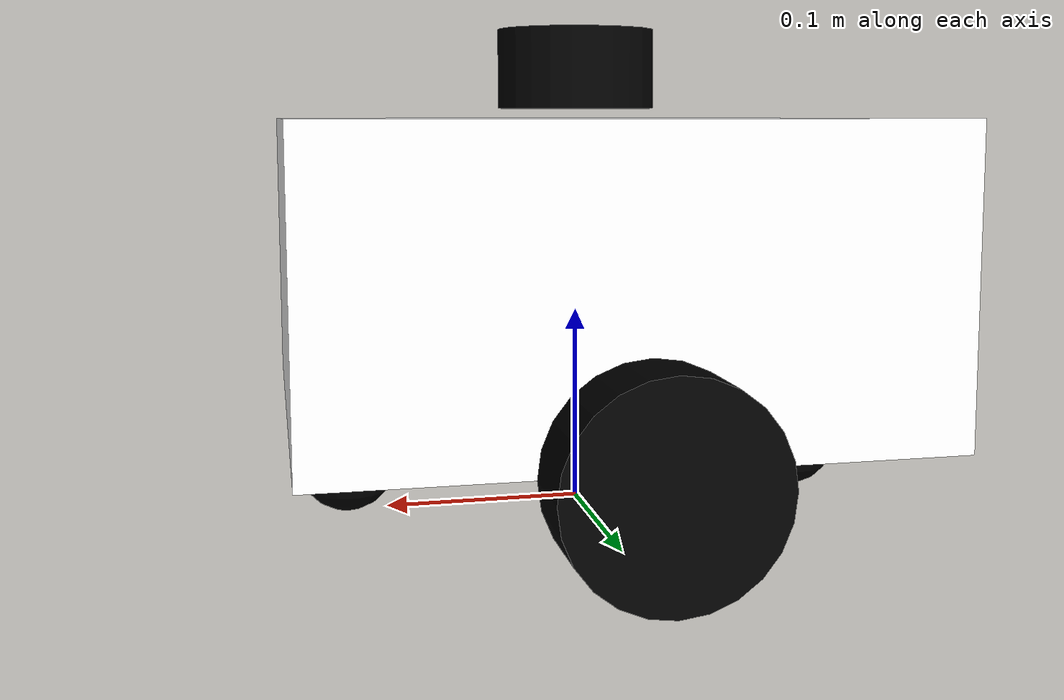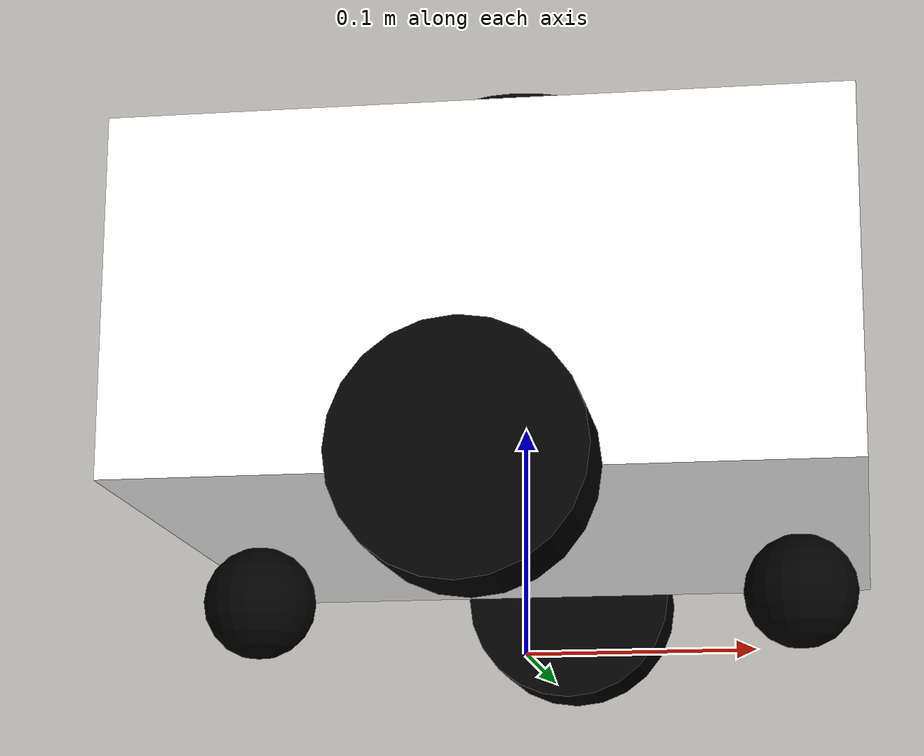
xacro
<?xml version="1.0"?>
<robot name="openamr" xmlns:xacro="http://www.ros.org/wiki/xacro">
    <!-- Include the core robot geometry -->
    <xacro:include filename="openamr_core.xacro" />

    <!-- Include the ros2_control interfaces -->
    <xacro:include filename="openamr_control.xacro" />
</robot>

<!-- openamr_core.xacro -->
<robot xmlns:xacro="http://www.ros.org/wiki/xacro">

    <!-- Materials -->
    <material name="white">
        <color rgba="1 1 1 1" />
    </material>
    <material name="black">
        <color rgba="0 0 0 1" />
    </material>

    <!-- Inertia Macros -->
    <xacro:macro name="box_inertia" params="m w h d">
        <inertial>
            <mass value="${m}" />
            <inertia ixx="${(m/12) * (h*h + d*d)}" ixy="0.0" ixz="0.0"
                     iyy="${(m/12) * (w*w + d*d)}" iyz="0.0"
                     izz="${(m/12) * (w*w + h*h)}" />
        </inertial>
    </xacro:macro>

    <xacro:macro name="cylinder_inertia" params="m r h">
        <inertial>
            <mass value="${m}" />
            <inertia ixx="${(m/12) * (3*r*r + h*h)}" ixy="0.0" ixz="0.0"
                     iyy="${(m/12) * (3*r*r + h*h)}" iyz="0.0"
                     izz="${(m/2) * (r*r)}" />
        </inertial>
    </xacro:macro>

    <!-- BASE FOOTPRINT -->
    <link name="base_footprint"/>

    <joint name="base_footprint_joint" type="fixed">
        <parent link="base_footprint"/>
        <child link="base_link"/>
        <origin xyz="0 0 0.05" rpy="0 0 0"/>
    </joint>

    <!-- BASE LINK (Chassis) -->
    <link name="base_link">
        <visual>
            <origin xyz="0 0 0.075" rpy="0 0 0"/>
            <geometry>
                <box size="0.3 0.3 0.15"/>
            </geometry>
            <material name="white"/>
        </visual>
        <collision>
            <origin xyz="0 0 0.075" rpy="0 0 0"/>
            <geometry>
                <box size="0.3 0.3 0.15"/>
            </geometry>
        </collision>
        <xacro:box_inertia m="5.0" w="0.3" h="0.15" d="0.3"/>
    </link>

    <!-- DRIVE WHEEL MACRO -->
    <xacro:macro name="wheel" params="prefix y_reflect">
        <link name="${prefix}_wheel">
            <visual>
                <origin xyz="0 0 0" rpy="${pi/2} 0 0"/>
                <geometry>
                    <cylinder radius="0.05" length="0.04"/>
                </geometry>
                <material name="black"/>
            </visual>
            <collision>
                <origin xyz="0 0 0" rpy="${pi/2} 0 0"/>
                <geometry>
                    <cylinder radius="0.05" length="0.04"/>
                </geometry>
            </collision>
            <xacro:cylinder_inertia m="0.5" r="0.05" h="0.04"/>
        </link>

        <joint name="${prefix}_wheel_joint" type="continuous">
            <parent link="base_link"/>
            <child link="${prefix}_wheel"/>
            <origin xyz="0 ${y_reflect * 0.17} 0" rpy="0 0 0"/>
            <axis xyz="0 1 0"/>

            <!-- This gives the simulated motors actual torque and speed limits -->
            <limit effort="100.0" velocity="10.0"/>
            <dynamics damping="0.1" friction="0.1"/>
        </joint>
    </xacro:macro>

    <!-- Instantiate Drive Wheels -->
    <xacro:wheel prefix="left" y_reflect="1" />
    <xacro:wheel prefix="right" y_reflect="-1" />

    <!-- CASTER WHEEL MACRO -->
    <xacro:macro name="caster" params="prefix x_offset">
        <link name="${prefix}_caster">
            <visual>
                <geometry>
                    <sphere radius="0.025"/>
                </geometry>
                <material name="black"/>
            </visual>
            <collision>
                <geometry>
                    <sphere radius="0.025"/>
                </geometry>
            </collision>
            <xacro:box_inertia m="0.1" w="0.05" h="0.05" d="0.05"/>
        </link>

        <joint name="${prefix}_caster_joint" type="fixed">
            <parent link="base_link"/>
            <child link="${prefix}_caster"/>
            <origin xyz="${x_offset} 0 -0.025" rpy="0 0 0"/>
        </joint>

        <!-- Gazebo Friction Tags for Casters -->
        <gazebo reference="${prefix}_caster">
            <mu1>0.0</mu1>
            <mu2>0.0</mu2>
            <material>Gazebo/Black</material>
        </gazebo>
    </xacro:macro>

    <!-- Instantiate Casters -->
    <xacro:caster prefix="front" x_offset="0.12" />
    <xacro:caster prefix="rear" x_offset="-0.12" />
    <!-- LIDAR SENSOR -->
    <link name="laser_frame">
        <visual>
            <geometry>
                <cylinder radius="0.04" length="0.04"/>
            </geometry>
            <material name="black"/>
        </visual>
        <collision>
            <geometry>
                <cylinder radius="0.04" length="0.04"/>
            </geometry>
        </collision>
        <xacro:cylinder_inertia m="0.1" r="0.04" h="0.04"/>
    </link>

    <joint name="laser_joint" type="fixed">
        <parent link="base_link"/>
        <child link="laser_frame"/>
        <origin xyz="0 0 0.175" rpy="0 0 0"/>
    </joint>

    <!-- Gazebo LiDAR Plugin -->
    <gazebo reference="laser_frame">
        <sensor name="lidar" type="gpu_lidar">
            <pose>0 0 0 0 0 0</pose>
            <topic>/scan</topic>
            <gz_frame_id>laser_frame</gz_frame_id>
            <update_rate>10</update_rate>
            <ray>
                <scan>
                    <horizontal>
                        <samples>360</samples>
                        <resolution>1.0</resolution>
                        <min_angle>-3.14159</min_angle>
                        <max_angle>3.14159</max_angle>
                    </horizontal>
                </scan>
                <range>
                    <min>0.15</min>
                    <max>8.0</max>
                    <resolution>0.01</resolution>
                </range>
            </ray>
            <always_on>true</always_on>
            <visualize>true</visualize>
        </sensor>
    </gazebo>
</robot>
